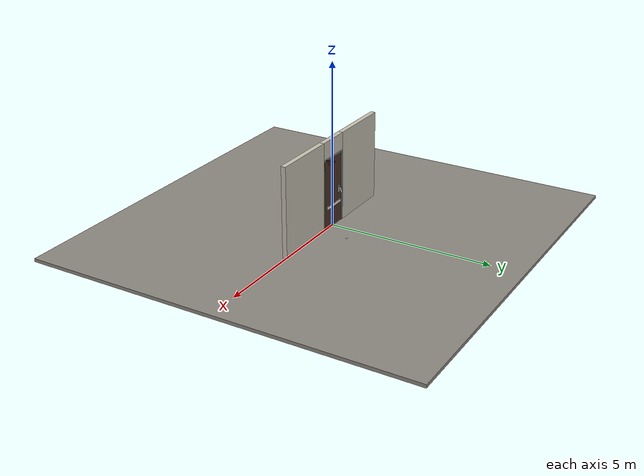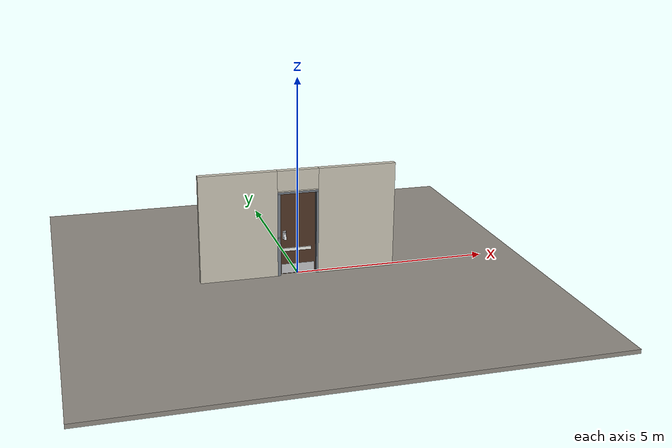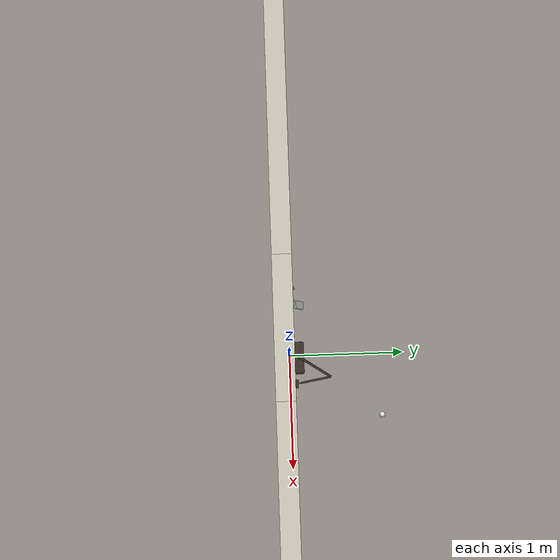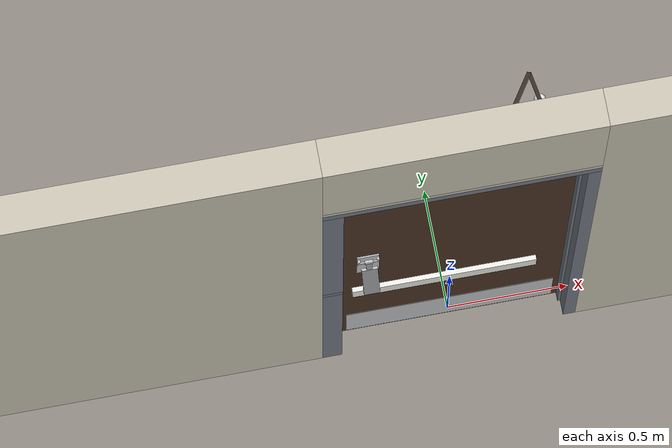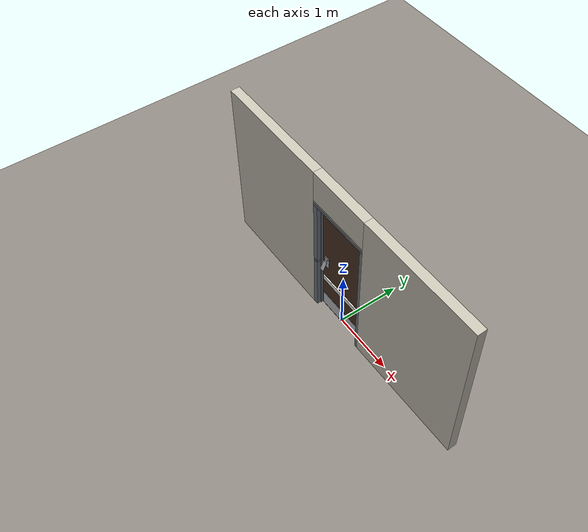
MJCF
<?xml version="1.0" ?>
<mujoco model="db0347_swing_single_full">
  <compiler angle="radian" meshdir="../../hardware" texturedir="../../textures" autolimits="true" inertiafromgeom="false"/>
  <option timestep="0.002" integrator="implicitfast" cone="elliptic" impratio="10" noslip_iterations="3">
    <flag multiccd="enable"/>
  </option>
  <size memory="16M"/>
  <default>
    <geom condim="4" solref="0.005 1" solimp="0.95 0.99 0.001"/>
    <joint solreflimit="0.005 1" solimplimit="0.95 0.99 0.001"/>
    <tendon solreflimit="0.005 1"/>
    <equality solref="0.002 1"/>
  </default>
  <visual>
    <headlight ambient="0.4 0.4 0.4" diffuse="0.7 0.7 0.7" specular="0.2 0.2 0.2"/>
    <quality shadowsize="4096"/>
    <map znear="0.01" zfar="60"/>
  </visual>
  <asset>
    <mesh name="closer_body_b226fdb10b" file="closer_body_b226fdb10b.obj"/>
    <mesh name="hinge_1cb808d647" file="hinge_1cb808d647.obj"/>
    <mesh name="hinge_jamb_7842e12854" file="hinge_jamb_7842e12854.obj"/>
    <material name="mat_floor" rgba="0.55 0.53 0.5 1" specular="0.2" shininess="0.15" reflectance="0"/>
    <material name="mat_wall" rgba="0.78 0.76 0.7 1" specular="0.2" shininess="0.1" reflectance="0"/>
    <material name="mat_leaf" rgba="0.3 0.2 0.14 1" specular="0.2" shininess="0.55" reflectance="0"/>
    <material name="mat_hinge" rgba="0.65 0.66 0.68 1" specular="0.74" shininess="0.5" reflectance="0.36"/>
    <material name="mat_op_stainless" rgba="0.75 0.76 0.77 1" specular="0.8" shininess="0.65" reflectance="0.4"/>
    <material name="mat_bolt" rgba="0.75 0.76 0.77 1" specular="0.8" shininess="0.65" reflectance="0.4"/>
    <material name="mat_frame" rgba="0.45 0.48 0.52 1" specular="0.32" shininess="0.6" reflectance="0.08"/>
    <material name="mat_seal" rgba="0.1 0.1 0.1 1" specular="0.2" shininess="0.1" reflectance="0"/>
    <material name="mat_closer" rgba="0.22 0.17 0.13 1" specular="0.8" shininess="0.6" reflectance="0.4"/>
    <material name="mat_kick" rgba="0.75 0.76 0.77 1" specular="0.8" shininess="0.65" reflectance="0.4"/>
    <material name="mat_bumper" rgba="0.92 0.92 0.9 1" specular="0.2" shininess="0.6" reflectance="0"/>
    <material name="mat_stop" rgba="0.9 0.9 0.92 1" specular="0.8" shininess="0.9" reflectance="0.4"/>
    <texture name="skybox" type="skybox" builtin="gradient" rgb1="0.6 0.7 0.85" rgb2="0.9 0.92 0.95" width="256" height="256"/>
  </asset>
  <worldbody>
    <light name="sun" pos="1.5 -2.5 4" dir="-0.3 0.5 -0.8" directional="true" diffuse="0.8 0.8 0.8" specular="0.3 0.3 0.3" castshadow="true"/>
    <light name="fill" pos="-1.5 2.5 3" dir="0.3 -0.5 -0.7" directional="true" diffuse="0.35 0.35 0.4" castshadow="false"/>
    <camera name="robot_view" pos="0 -2.681312 1.812087" xyaxes="1 0 0 0 0.26963 0.962964" fovy="52"/>
    <camera name="far_view" pos="0 2.594313 1.812087" xyaxes="-1 0 0 0 -0.26963 0.962964" fovy="52"/>
    <camera name="iso" pos="-2.004737 -2.259262 2.234138" xyaxes="0.741536 -0.670913 0 0.242917 0.268487 0.932151" fovy="46"/>
    <camera name="detail_handle" pos="-0.1645 -0.718796 1.293663" xyaxes="0.97561 0.219512 0 -0.070934 0.315262 0.94635" fovy="38"/>
    <geom name="floor" type="box" size="6 6 0.05" pos="0 0 -0.05" material="mat_floor" group="0" contype="1" conaffinity="1" friction="0.8 0.005 0.0001" density="2400"/>
    <geom name="wall_left" type="box" size="0.97975 0.0725 1.3735" pos="-1.52025 -0.0435 1.3735" material="mat_wall" group="0" contype="1" conaffinity="1" friction="0.6 0.005 0.0001" density="800"/>
    <geom name="wall_right" type="box" size="0.99475 0.0725 1.3735" pos="1.50525 -0.0435 1.3735" material="mat_wall" group="0" contype="1" conaffinity="1" friction="0.6 0.005 0.0001" density="800"/>
    <geom name="wall_header" type="box" size="0.5255 0.0725 0.26" pos="-0.015 -0.0435 2.487" material="mat_wall" group="0" contype="1" conaffinity="1" friction="0.6 0.005 0.0001" density="800"/>
    <geom name="hinge_0_jamb" type="mesh" mesh="hinge_jamb_7842e12854" pos="0.4575 0.029 0.259" quat="0 0 0 1" material="mat_hinge" group="1" contype="0" conaffinity="0" density="7850"/>
    <geom name="hinge_1_jamb" type="mesh" mesh="hinge_jamb_7842e12854" pos="0.4575 0.029 1.076" quat="0 0 0 1" material="mat_hinge" group="1" contype="0" conaffinity="0" density="7850"/>
    <geom name="hinge_2_jamb" type="mesh" mesh="hinge_jamb_7842e12854" pos="0.4575 0.029 1.963" quat="0 0 0 1" material="mat_hinge" group="1" contype="0" conaffinity="0" density="7850"/>
    <geom name="jamb_hinge" type="box" size="0.025 0.0725 1.0735" pos="0.4855 -0.0435 1.0735" material="mat_frame" group="0" contype="1" conaffinity="1" friction="0.6 0.005 0.0001" density="300"/>
    <geom name="strike_1016_wall_n" type="box" size="0.04 0.05325 0.018" pos="-0.5005 -0.06275 1.016" material="mat_frame" group="0" contype="1" conaffinity="1" friction="0.6 0.005 0.0001" density="300"/>
    <geom name="strike_1016_wall_p" type="box" size="0.04 0.008 0.018" pos="-0.5005 0.0175 1.016" material="mat_frame" group="0" contype="1" conaffinity="1" friction="0.6 0.005 0.0001" density="300"/>
    <geom name="strike_1016_ramp" type="box" size="0.04 0.018028 0.018" pos="-0.503782 0.018312 1.016" quat="0.957092 0 0 0.289784" material="mat_frame" group="0" contype="1" conaffinity="1" friction="0.12 0.005 0.0001" density="300"/>
    <geom name="strike_1016_back" type="box" size="0.0285 0.0095 0.018" pos="-0.512 0 1.016" material="mat_frame" group="0" contype="1" conaffinity="1" friction="0.6 0.005 0.0001" density="300"/>
    <geom name="jamb_strike_0" type="box" size="0.04 0.0725 0.499" pos="-0.5005 -0.0435 0.499" material="mat_frame" group="0" contype="1" conaffinity="1" friction="0.6 0.005 0.0001" density="300"/>
    <geom name="jamb_strike_1" type="box" size="0.04 0.0725 0.5565" pos="-0.5005 -0.0435 1.5905" material="mat_frame" group="0" contype="1" conaffinity="1" friction="0.6 0.005 0.0001" density="300"/>
    <geom name="jamb_head" type="box" size="0.5255 0.0725 0.025" pos="-0.015 -0.0435 2.172" material="mat_frame" group="0" contype="1" conaffinity="1" friction="0.6 0.005 0.0001" density="300"/>
    <geom name="head_stud" type="box" size="0.5255 0.0725 0.015" pos="-0.015 -0.0435 2.212" material="mat_wall" group="0" contype="1" conaffinity="1" friction="0.6 0.005 0.0001" density="500"/>
    <geom name="stop_hinge" type="box" size="0.0055 0.016 1.0735" pos="0.455 -0.0385 1.0735" material="mat_frame" group="0" contype="1" conaffinity="1" friction="0.6 0.005 0.0001" density="300"/>
    <geom name="stop_strike" type="box" size="0.0055 0.016 1.0735" pos="-0.455 -0.0385 1.0735" material="mat_frame" group="0" contype="1" conaffinity="1" friction="0.6 0.005 0.0001" density="300"/>
    <geom name="stop_head" type="box" size="0.4605 0.016 0.0055" pos="0 -0.0385 2.1415" material="mat_frame" group="0" contype="1" conaffinity="1" friction="0.6 0.005 0.0001" density="300"/>
    <geom name="seal_hinge" type="box" size="0.004 0.002 1.0735" pos="0.4575 -0.024 1.0735" material="mat_seal" group="1" contype="0" conaffinity="0" density="1100"/>
    <geom name="seal_strike" type="box" size="0.004 0.002 1.0735" pos="-0.4575 -0.024 1.0735" material="mat_seal" group="1" contype="0" conaffinity="0" density="1100"/>
    <geom name="seal_head" type="box" size="0.4405 0.002 0.008" pos="0 -0.024 2.135" material="mat_seal" group="1" contype="0" conaffinity="0" density="1100"/>
    <geom name="closer_bracket" type="box" size="0.03 0.012 0.014" pos="0.3605 0.041 2.177" material="mat_closer" group="1" contype="0" conaffinity="0" density="2700"/>
    <geom name="floor_stop_dome" type="sphere" size="0.025" pos="0.545135 0.801201 0" material="mat_stop" group="0" contype="1" conaffinity="1" friction="0.6 0.005 0.0001" density="7000"/>
    <site name="approach_point" pos="0 -1.5 0" quat="1 0 0 0" size="0.05" rgba="0.2 0.9 0.2 0.5" group="4"/>
    <site name="goal_point" pos="0 1.5 0" quat="1 0 0 0" size="0.05" rgba="0.2 0.9 0.2 0.5" group="4"/>
    <site name="door_plane_center" pos="0 0 1.0735" quat="1 0 0 0" size="0.02" rgba="0.2 0.9 0.2 0.5" group="4"/>
    <body name="leaf" pos="0.4605 0 0">
      <inertial pos="-0.445209 0.005683 1.12865" mass="72.323585" quat="0.509542 -0.511172 -0.495931 -0.482828" diaginertia="4.752591063 32.040435213 36.720308839"/>
      <joint name="leaf_hinge" type="hinge" axis="0 0 -1" pos="-0.003 0.029 0" limited="true" range="0 1.658063" solreflimit="0.02 1" damping="10.268966" frictionloss="2.469443" stiffness="12.528677" springref="-2.635554" armature="0.02"/>
      <geom name="leaf_slab" type="box" size="0.457 0.022 1.067" pos="-0.46 0 1.076" material="mat_leaf" group="0" contype="1" conaffinity="1" friction="0.35 0.005 0.0001" density="1"/>
      <geom name="hinge_0" type="mesh" mesh="hinge_1cb808d647" pos="-0.003 0.029 0.259" quat="0 0 0 1" material="mat_hinge" group="1" contype="0" conaffinity="0" density="7850"/>
      <geom name="hinge_1" type="mesh" mesh="hinge_1cb808d647" pos="-0.003 0.029 1.076" quat="0 0 0 1" material="mat_hinge" group="1" contype="0" conaffinity="0" density="7850"/>
      <geom name="hinge_2" type="mesh" mesh="hinge_1cb808d647" pos="-0.003 0.029 1.963" quat="0 0 0 1" material="mat_hinge" group="1" contype="0" conaffinity="0" density="7850"/>
      <geom name="leaf_handle_paddle_backplate_n" type="box" size="0.044 0.003 0.11" pos="-0.805 -0.025 1.049527" material="mat_op_stainless" group="0" contype="1" conaffinity="1" friction="0.6 0.005 0.0001" density="3000"/>
      <geom name="leaf_handle_paddle_bearing_n_-1" type="box" size="0.005 0.006 0.009" pos="-0.843 -0.034 1.126527" material="mat_op_stainless" group="0" contype="1" conaffinity="1" friction="0.6 0.005 0.0001" density="3000"/>
      <geom name="leaf_handle_paddle_bearing_n_1" type="box" size="0.005 0.006 0.009" pos="-0.767 -0.034 1.126527" material="mat_op_stainless" group="0" contype="1" conaffinity="1" friction="0.6 0.005 0.0001" density="3000"/>
      <geom name="leaf_handle_paddle_pin_n" type="cylinder" size="0.004 0.043" pos="-0.805 -0.04 1.126527" quat="0.707107 0 0.707107 0" material="mat_op_stainless" group="1" contype="0" conaffinity="0" density="7850"/>
      <geom name="leaf_handle_paddle_backplate_p" type="box" size="0.044 0.003 0.11" pos="-0.805 0.025 1.049527" material="mat_op_stainless" group="0" contype="1" conaffinity="1" friction="0.6 0.005 0.0001" density="3000"/>
      <geom name="leaf_handle_paddle_bearing_p_-1" type="box" size="0.005 0.006 0.009" pos="-0.843 0.034 1.126527" material="mat_op_stainless" group="0" contype="1" conaffinity="1" friction="0.6 0.005 0.0001" density="3000"/>
      <geom name="leaf_handle_paddle_bearing_p_1" type="box" size="0.005 0.006 0.009" pos="-0.767 0.034 1.126527" material="mat_op_stainless" group="0" contype="1" conaffinity="1" friction="0.6 0.005 0.0001" density="3000"/>
      <geom name="leaf_handle_paddle_pin_p" type="cylinder" size="0.004 0.043" pos="-0.805 0.04 1.126527" quat="0.707107 0 0.707107 0" material="mat_op_stainless" group="1" contype="0" conaffinity="0" density="7850"/>
      <geom name="leaf_latch_bolt_faceplate" type="box" size="0.0006 0.014 0.028" pos="-0.9164 0 1.016" material="mat_bolt" group="1" contype="0" conaffinity="0" density="8500"/>
      <geom name="closer_body" type="mesh" mesh="closer_body_b226fdb10b" pos="-0.3 0.022 2.054" quat="0 0 0.707107 0.707107" material="mat_closer" group="1" contype="0" conaffinity="0" density="2000"/>
      <geom name="closer_body_col" type="box" size="0.12 0.04 0.03" pos="-0.3 0.062 2.054" material="mat_closer" group="3" contype="1" conaffinity="1" rgba="0.8 0.3 0.3 0.25" friction="0.6 0.005 0.0001" density="2000"/>
      <geom name="closer_pinion_shaft" type="cylinder" size="0.008 0.0615" pos="-0.3 0.064 2.1155" material="mat_closer" group="1" contype="0" conaffinity="0" density="2700"/>
      <geom name="kick_plate_n" type="box" size="0.427 0.0008 0.125" pos="-0.46 -0.0228 0.144" material="mat_kick" group="2" contype="0" conaffinity="0" density="7900"/>
      <geom name="bumper_rail_n" type="box" size="0.372 0.01 0.04" pos="-0.495 -0.032 0.659" material="mat_bumper" group="0" contype="1" conaffinity="1" friction="0.6 0.005 0.0001" density="1200"/>
      <geom name="bumper_rail_p" type="box" size="0.372 0.01 0.04" pos="-0.495 0.032 0.659" material="mat_bumper" group="0" contype="1" conaffinity="1" friction="0.6 0.005 0.0001" density="1200"/>
      <site name="leaf_edge_mid" pos="-0.917 0 1.067" quat="1 0 0 0" size="0.02" rgba="0.2 0.9 0.2 0.5" group="4"/>
      <body name="leaf_handle" pos="-0.805 -0.04 1.126527">
        <inertial pos="0 -0.041612 -0.098421" mass="0.407526" quat="-0.390699 0.589368 0.589368 0.390699" diaginertia="0.000129106 0.001199851 0.001319468"/>
        <joint name="leaf_handle_hinge" type="hinge" axis="1 0 0" limited="true" range="0 0.4" damping="0.275853" frictionloss="0.06" stiffness="1.2" springref="-1.25" armature="0.01"/>
        <geom name="leaf_handle_paddle_col_n" type="box" size="0.032 0.006 0.077" pos="0 -0.04673 -0.110527" quat="0.980067 -0.198669 0 0" material="mat_op_stainless" group="0" contype="1" conaffinity="1" friction="0.6 0.005 0.0001" density="3000"/>
        <geom name="leaf_handle_paddle_neck_n" type="box" size="0.012 0.004 0.029" pos="0 -0.011293 -0.026711" quat="0.980067 -0.198669 0 0" material="mat_op_stainless" group="0" contype="1" conaffinity="1" friction="0.6 0.005 0.0001" density="3000"/>
        <geom name="leaf_handle_paddle_hub_n" type="cylinder" size="0.008 0.016" pos="0 0 0" quat="0.707107 0 0.707107 0" material="mat_op_stainless" group="1" contype="0" conaffinity="0" density="3000"/>
        <site name="leaf_handle_grip_n" pos="0 -0.052257 -0.108191" quat="0.833492 0.552531 0 0" size="0.012" rgba="0.2 0.9 0.2 0.5" group="4"/>
      </body>
      <body name="leaf_handle_paddle_follower_p" pos="-0.805 0.04 1.126527">
        <inertial pos="0 0.041612 -0.098421" mass="0.407526" quat="0.589368 -0.390699 -0.390699 -0.589368" diaginertia="0.000129106 0.001199851 0.001319468"/>
        <joint name="leaf_handle_paddle_follower_p_hinge" type="hinge" axis="1 0 0" limited="true" range="0 0.4" armature="0.002"/>
        <geom name="leaf_handle_paddle_col_p" type="box" size="0.032 0.006 0.077" pos="0 0.04673 -0.110527" quat="0.980067 0.198669 0 0" material="mat_op_stainless" group="0" contype="1" conaffinity="1" friction="0.6 0.005 0.0001" density="3000"/>
        <geom name="leaf_handle_paddle_neck_p" type="box" size="0.012 0.004 0.029" pos="0 0.011293 -0.026711" quat="0.980067 0.198669 0 0" material="mat_op_stainless" group="0" contype="1" conaffinity="1" friction="0.6 0.005 0.0001" density="3000"/>
        <geom name="leaf_handle_paddle_hub_p" type="cylinder" size="0.008 0.016" pos="0 0 0" quat="0.707107 0 0.707107 0" material="mat_op_stainless" group="1" contype="0" conaffinity="0" density="3000"/>
        <site name="leaf_handle_grip_p" pos="0 0.041204 -0.112864" quat="0.552531 0.833492 0 0" size="0.012" rgba="0.2 0.9 0.2 0.5" group="4"/>
      </body>
      <body name="leaf_latch_bolt" pos="-0.917 0 1.016">
        <inertial pos="0.0055 0 0" mass="0.074627" quat="0.92388 0.382683 0 0" diaginertia="0.000002271 0.000013255 0.000013255"/>
        <joint name="leaf_latch_bolt_slide" type="slide" axis="1 0 0" limited="true" range="0 0.019" damping="2" frictionloss="0.3" stiffness="550" springref="-0.01" armature="0.1"/>
        <geom name="leaf_latch_bolt_capsule" type="capsule" size="0.008 0.0165" pos="0.0055 0 0" quat="0.707107 0 -0.707107 0" material="mat_bolt" group="0" contype="1" conaffinity="1" friction="0.2 0.005 0.0001" density="8500"/>
      </body>
      <body name="closer_arm_main" pos="-0.3 0.064 2.177" quat="0.881485 0 0 0.472212">
        <inertial pos="0.14 0 0" mass="0.12096" quat="1 0 0 0" diaginertia="0.000003588 0.00079128 0.000792852"/>
        <joint name="closer_pinion" type="hinge" axis="0 0 1" limited="false" damping="0.01" armature="0.002"/>
        <geom name="closer_arm_main_geom" type="box" size="0.14 0.008 0.005" pos="0.14 0 0" material="mat_closer" group="1" contype="0" conaffinity="0" density="2700"/>
        <body name="closer_arm_fore" pos="0.28 0 0" quat="0.371222 0 0 -0.928544">
          <inertial pos="0.128088 0 0" mass="0.076531" quat="1 0 0 0" diaginertia="0.000001771 0.000437665 0.000438201"/>
          <joint name="closer_elbow" type="hinge" axis="0 0 1" limited="false" damping="0.01" armature="0.002"/>
          <geom name="closer_arm_fore_geom" type="box" size="0.1125 0.007 0.004" pos="0.1125 0 0" material="mat_closer" group="1" contype="0" conaffinity="0" density="2700"/>
          <geom name="closer_fore_neck" type="box" size="0.0175 0.003 0.003" pos="0.2425 0 0" material="mat_closer" group="1" contype="0" conaffinity="0" density="2700"/>
          <geom name="closer_fore_pivot" type="cylinder" size="0.005 0.012" pos="0.26 0 0" material="mat_closer" group="1" contype="0" conaffinity="0" density="2700"/>
        </body>
      </body>
    </body>
  </worldbody>
  <tendon>
    <fixed name="leaf_latch_bolt_coupling" limited="true" range="0 10">
      <joint joint="leaf_latch_bolt_slide" coef="1"/>
      <joint joint="leaf_handle_hinge" coef="-0.051351"/>
    </fixed>
  </tendon>
  <equality>
    <joint name="leaf_handle_paddle_cam_p" joint1="leaf_handle_paddle_follower_p_hinge" joint2="leaf_handle_hinge" polycoef="0 1 0 0 0" active="true"/>
    <connect name="closer_arm_connect" body1="closer_arm_fore" body2="world" anchor="0.26 0 0" active="true"/>
  </equality>
  <contact>
    <exclude body1="closer_arm_main" body2="leaf"/>
    <exclude body1="closer_arm_fore" body2="leaf"/>
    <exclude body1="closer_arm_main" body2="closer_arm_fore"/>
  </contact>
  <sensor>
    <jointpos name="leaf_hinge_pos" joint="leaf_hinge"/>
    <jointvel name="leaf_hinge_vel" joint="leaf_hinge"/>
    <jointpos name="leaf_handle_hinge_pos" joint="leaf_handle_hinge"/>
    <jointvel name="leaf_handle_hinge_vel" joint="leaf_handle_hinge"/>
    <jointpos name="leaf_latch_bolt_slide_pos" joint="leaf_latch_bolt_slide"/>
    <jointvel name="leaf_latch_bolt_slide_vel" joint="leaf_latch_bolt_slide"/>
  </sensor>
</mujoco>
